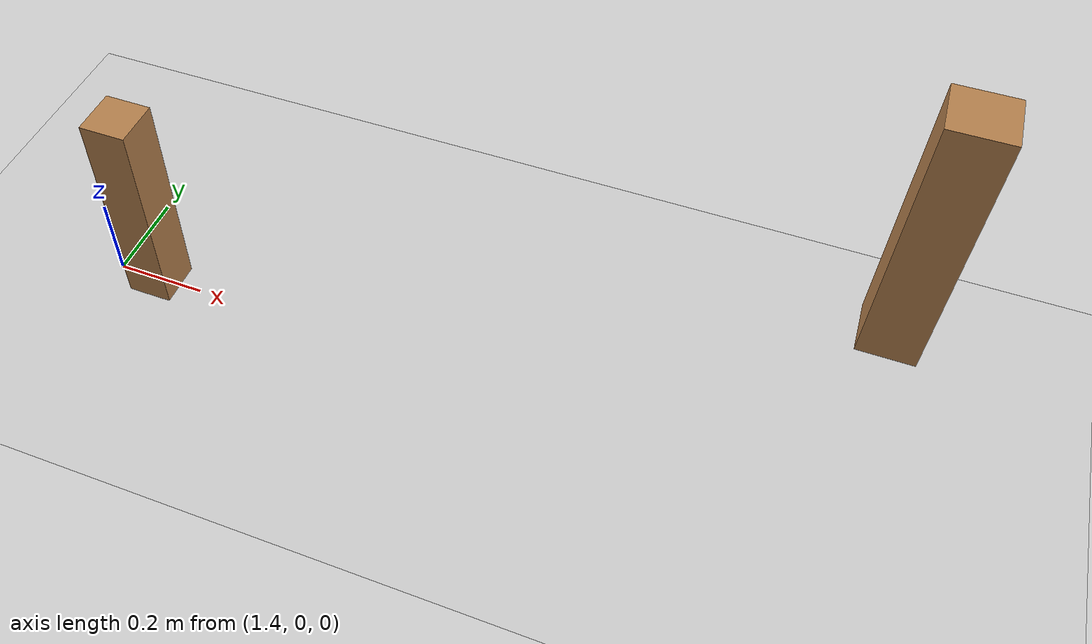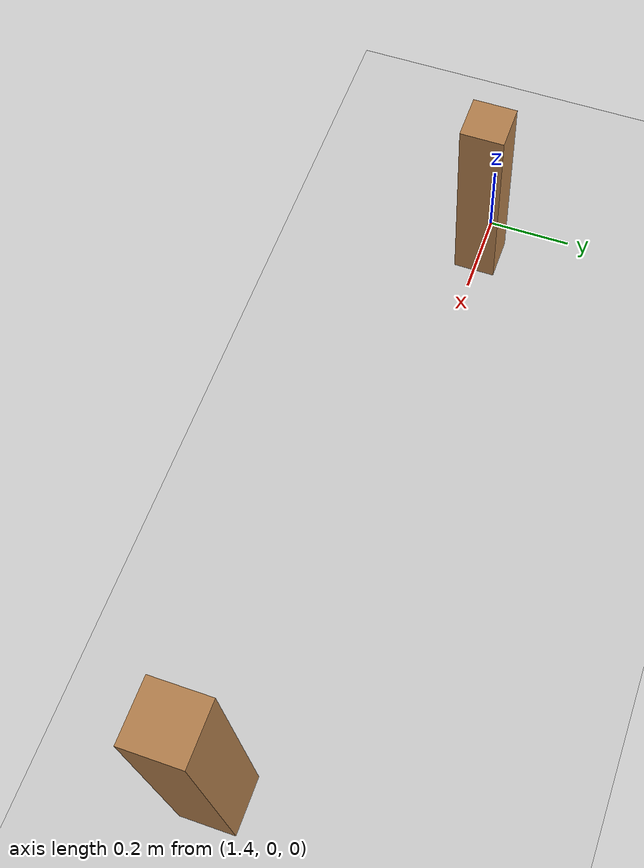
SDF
<?xml version="1.0" ?>

<sdf version="1.5">
    <world name="default">
        <!-- Target real time factor is the product of max_step_size and real_time_update_rate -->
        <!-- Negative real_time_update_rate means that Gazebo will run as fast as possible -->
        <physics type="ode">
            <type>world</type>
            <max_step_size>0.001</max_step_size>
            <real_time_update_rate>1000</real_time_update_rate>
            <iters>500</iters>
        </physics>
        <!-- A global light source -->
        <include>
            <uri>model://sun</uri>
        </include>
        <!-- A ground plane -->
        <include>
            <uri>model://ground_plane</uri>
        </include>

        <model name='obstacle1'>
          <static>true</static>
            <pose frame=''>1.5 0.0 0.25 0 -0 0</pose>
            <link name='obstacle1'>
              <visual name='obstacle1'>
                <geometry>
                  <box>
                    <size>0.1 0.1 0.5</size>
                  </box>
                </geometry>
                <material>
                  <script>
                    <uri>file://media/materials/scripts/gazebo.material</uri>
                    <name>Gazebo/Wood</name>
                  </script>
                  <ambient>1 1 1 1</ambient>
                </material>
              </visual>
              <collision name='obstacle1'>
                <geometry>
                  <box>
                    <size>0.1 0.1 0.5</size>
                  </box>
                </geometry>
                <surface>
                    <friction>
                      <ode>
                        <mu>10</mu>
                        <mu2>10</mu2>
                      </ode>
                    </friction >
                  </surface>
              </collision>
            </link>
          </model>

          <model name='obstacle2'>
            <static>true</static>
              <pose frame=''>3 0.0 0.75 0 -0 0</pose>
              <link name='obstacle2'>
                <visual name='obstacle2'>
                  <geometry>
                    <box>
                      <size>0.1 0.1 0.5</size>
                    </box>
                  </geometry>
                  <material>
                    <script>
                      <uri>file://media/materials/scripts/gazebo.material</uri>
                      <name>Gazebo/Wood</name>
                    </script>
                    <ambient>1 1 1 1</ambient>
                  </material>
                </visual>
                <collision name='obstacle2'>
                  <geometry>
                    <box>
                      <size>0.1 0.1 0.5</size>
                    </box>
                  </geometry>
                  <surface>
                      <friction>
                        <ode>
                          <mu>10</mu>
                          <mu2>10</mu2>
                        </ode>
                      </friction >
                    </surface>
                </collision>
              </link>
            </model>

    </world>
</sdf>
